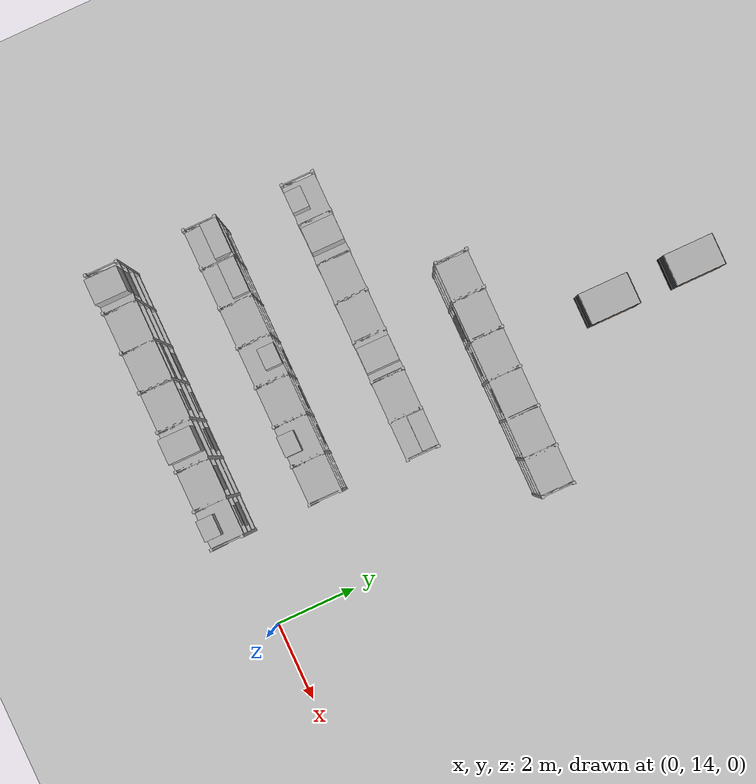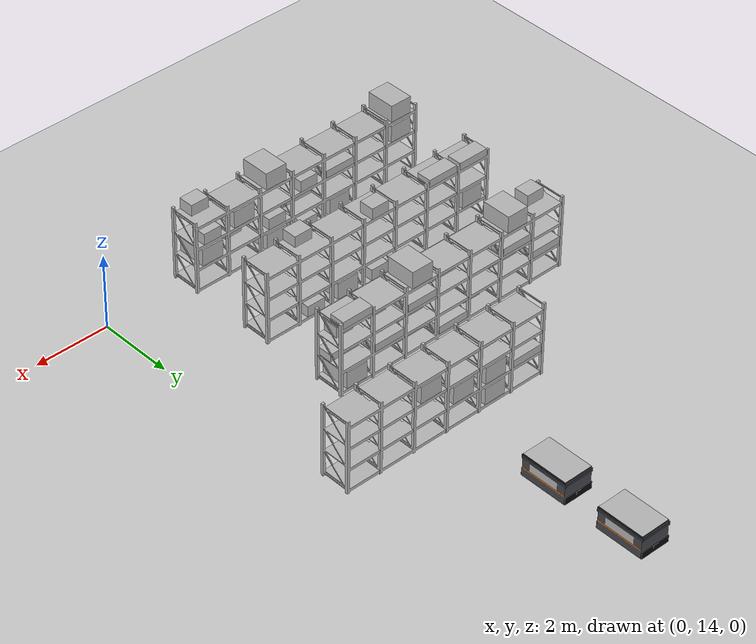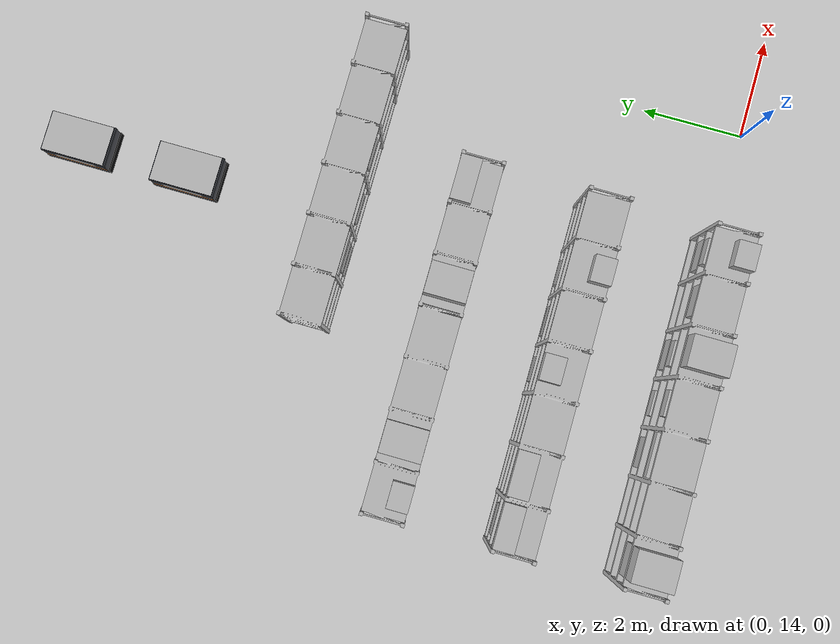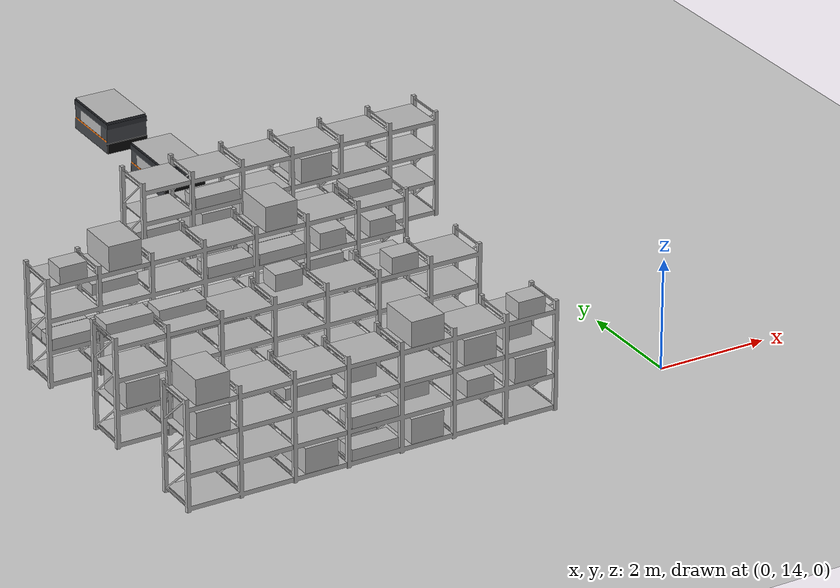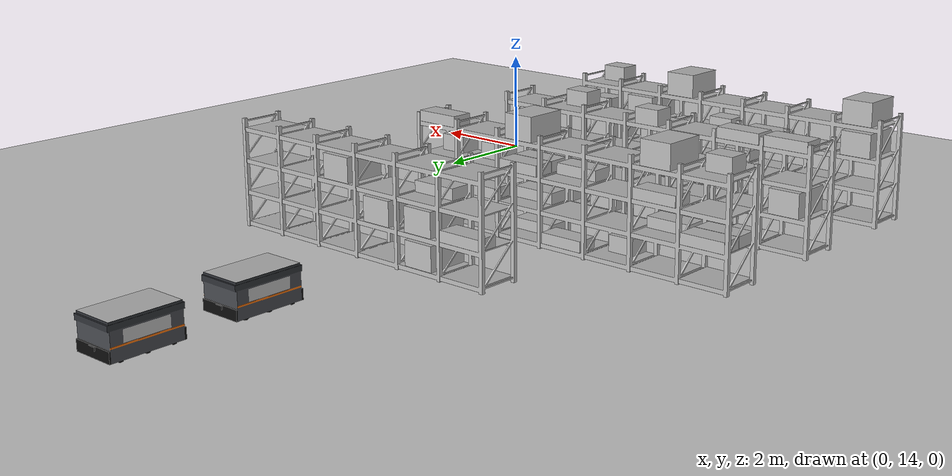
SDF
<sdf version="1.6">
 <world name="default">
  <model name="ground_plane">
   <static>1</static>
   <link name="link">
    <collision name="collision">
     <geometry><plane><normal>0 0 1</normal><size>100 100</size></plane></geometry>
     <surface><friction><ode><mu>100</mu><mu2>50</mu2></ode></friction></surface>
    </collision>
    <visual name="visual">
     <cast_shadows>0</cast_shadows>
     <geometry><plane><normal>0 0 1</normal><size>100 100</size></plane></geometry>
     <material>
      <script><uri>file://media/materials/scripts/gazebo.material</uri><name>Gazebo/Grey</name></script>
     </material>
    </visual>
   </link>
  </model>
  <include>
   <name>rack_D1_0</name>
   <uri>model://warehouse_rack_4lvl_6bay</uri>
   <pose>-3.1401 21.255 0 0 0 -1.5708</pose>
  </include>
  <model name="box_D_001">
   <pose>-5.5393 21.46 0.782 0 0 -1.5708</pose>
   <link name="link">
    <inertial>
     <mass>4.0</mass>
     <inertia><ixx>0.25417</ixx><iyy>0.06667</iyy><izz>0.29417</izz><ixy>0</ixy><ixz>0</ixz><iyz>0</iyz></inertia>
    </inertial>
    <collision name="collision">
     <geometry><box><size>0.4 0.85 0.2</size></box></geometry>
     <surface><friction><ode><mu>1.0</mu><mu2>1.0</mu2></ode></friction></surface>
    </collision>
    <visual name="visual">
     <cast_shadows>0</cast_shadows>
     <geometry><box><size>0.4 0.85 0.2</size></box></geometry>
     <material>
      <script>
       <uri>model://labeled_boxes/materials/scripts</uri>
       <uri>model://labeled_boxes/materials/textures</uri>
       <name>LabeledBox/D-001</name>
      </script>
     </material>
    </visual>
   </link>
  </model>
  <model name="box_D_002">
   <pose>-4.5901 21.255 0.327 0 0 -1.5708</pose>
   <link name="link">
    <inertial>
     <mass>8.0</mass>
     <inertia><ixx>0.37500</ixx><iyy>0.54060</iyy><izz>0.64560</izz><ixy>0</ixy><ixz>0</ixz><iyz>0</iyz></inertia>
    </inertial>
    <collision name="collision">
     <geometry><box><size>0.78 0.6 0.45</size></box></geometry>
     <surface><friction><ode><mu>1.0</mu><mu2>1.0</mu2></ode></friction></surface>
    </collision>
    <visual name="visual">
     <cast_shadows>0</cast_shadows>
     <geometry><box><size>0.78 0.6 0.45</size></box></geometry>
     <material>
      <script>
       <uri>model://labeled_boxes/materials/scripts</uri>
       <uri>model://labeled_boxes/materials/textures</uri>
       <name>LabeledBox/D-002</name>
      </script>
     </material>
    </visual>
   </link>
  </model>
  <model name="box_D_003">
   <pose>-4.5901 21.255 0.907 0 0 -1.5708</pose>
   <link name="link">
    <inertial>
     <mass>8.0</mass>
     <inertia><ixx>0.37500</ixx><iyy>0.54060</iyy><izz>0.64560</izz><ixy>0</ixy><ixz>0</ixz><iyz>0</iyz></inertia>
    </inertial>
    <collision name="collision">
     <geometry><box><size>0.78 0.6 0.45</size></box></geometry>
     <surface><friction><ode><mu>1.0</mu><mu2>1.0</mu2></ode></friction></surface>
    </collision>
    <visual name="visual">
     <cast_shadows>0</cast_shadows>
     <geometry><box><size>0.78 0.6 0.45</size></box></geometry>
     <material>
      <script>
       <uri>model://labeled_boxes/materials/scripts</uri>
       <uri>model://labeled_boxes/materials/textures</uri>
       <name>LabeledBox/D-003</name>
      </script>
     </material>
    </visual>
   </link>
  </model>
  <model name="box_D_004">
   <pose>-4.5901 21.05 1.362 0 0 -1.5708</pose>
   <link name="link">
    <inertial>
     <mass>4.0</mass>
     <inertia><ixx>0.25417</ixx><iyy>0.06667</iyy><izz>0.29417</izz><ixy>0</ixy><ixz>0</ixz><iyz>0</iyz></inertia>
    </inertial>
    <collision name="collision">
     <geometry><box><size>0.4 0.85 0.2</size></box></geometry>
     <surface><friction><ode><mu>1.0</mu><mu2>1.0</mu2></ode></friction></surface>
    </collision>
    <visual name="visual">
     <cast_shadows>0</cast_shadows>
     <geometry><box><size>0.4 0.85 0.2</size></box></geometry>
     <material>
      <script>
       <uri>model://labeled_boxes/materials/scripts</uri>
       <uri>model://labeled_boxes/materials/textures</uri>
       <name>LabeledBox/D-004</name>
      </script>
     </material>
    </visual>
   </link>
  </model>
  <model name="box_D_005">
   <pose>-3.6234 21.255 0.907 0 0 -1.5708</pose>
   <link name="link">
    <inertial>
     <mass>8.0</mass>
     <inertia><ixx>0.37500</ixx><iyy>0.54060</iyy><izz>0.64560</izz><ixy>0</ixy><ixz>0</ixz><iyz>0</iyz></inertia>
    </inertial>
    <collision name="collision">
     <geometry><box><size>0.78 0.6 0.45</size></box></geometry>
     <surface><friction><ode><mu>1.0</mu><mu2>1.0</mu2></ode></friction></surface>
    </collision>
    <visual name="visual">
     <cast_shadows>0</cast_shadows>
     <geometry><box><size>0.78 0.6 0.45</size></box></geometry>
     <material>
      <script>
       <uri>model://labeled_boxes/materials/scripts</uri>
       <uri>model://labeled_boxes/materials/textures</uri>
       <name>LabeledBox/D-005</name>
      </script>
     </material>
    </visual>
   </link>
  </model>
  <model name="box_D_007">
   <pose>-2.6568 21.255 1.487 0 0 -1.5708</pose>
   <link name="link">
    <inertial>
     <mass>8.0</mass>
     <inertia><ixx>0.37500</ixx><iyy>0.54060</iyy><izz>0.64560</izz><ixy>0</ixy><ixz>0</ixz><iyz>0</iyz></inertia>
    </inertial>
    <collision name="collision">
     <geometry><box><size>0.78 0.6 0.45</size></box></geometry>
     <surface><friction><ode><mu>1.0</mu><mu2>1.0</mu2></ode></friction></surface>
    </collision>
    <visual name="visual">
     <cast_shadows>0</cast_shadows>
     <geometry><box><size>0.78 0.6 0.45</size></box></geometry>
     <material>
      <script>
       <uri>model://labeled_boxes/materials/scripts</uri>
       <uri>model://labeled_boxes/materials/textures</uri>
       <name>LabeledBox/D-007</name>
      </script>
     </material>
    </visual>
   </link>
  </model>
  <include>
   <name>rack_D2_0</name>
   <uri>model://warehouse_rack_4lvl_7bay</uri>
   <pose>-5.6401 18.855 0 0 0 -1.5708</pose>
  </include>
  <model name="box_D_011">
   <pose>-8.5369 19.06 0.782 0 0 -1.5708</pose>
   <link name="link">
    <inertial>
     <mass>4.0</mass>
     <inertia><ixx>0.25417</ixx><iyy>0.06667</iyy><izz>0.29417</izz><ixy>0</ixy><ixz>0</ixz><iyz>0</iyz></inertia>
    </inertial>
    <collision name="collision">
     <geometry><box><size>0.4 0.85 0.2</size></box></geometry>
     <surface><friction><ode><mu>1.0</mu><mu2>1.0</mu2></ode></friction></surface>
    </collision>
    <visual name="visual">
     <cast_shadows>0</cast_shadows>
     <geometry><box><size>0.4 0.85 0.2</size></box></geometry>
     <material>
      <script>
       <uri>model://labeled_boxes/materials/scripts</uri>
       <uri>model://labeled_boxes/materials/textures</uri>
       <name>LabeledBox/D-011</name>
      </script>
     </material>
    </visual>
   </link>
  </model>
  <model name="box_D_012">
   <pose>-8.5369 18.65 0.782 0 0 -1.5708</pose>
   <link name="link">
    <inertial>
     <mass>4.0</mass>
     <inertia><ixx>0.25417</ixx><iyy>0.06667</iyy><izz>0.29417</izz><ixy>0</ixy><ixz>0</ixz><iyz>0</iyz></inertia>
    </inertial>
    <collision name="collision">
     <geometry><box><size>0.4 0.85 0.2</size></box></geometry>
     <surface><friction><ode><mu>1.0</mu><mu2>1.0</mu2></ode></friction></surface>
    </collision>
    <visual name="visual">
     <cast_shadows>0</cast_shadows>
     <geometry><box><size>0.4 0.85 0.2</size></box></geometry>
     <material>
      <script>
       <uri>model://labeled_boxes/materials/scripts</uri>
       <uri>model://labeled_boxes/materials/textures</uri>
       <name>LabeledBox/D-012</name>
      </script>
     </material>
    </visual>
   </link>
  </model>
  <model name="box_D_013">
   <pose>-8.5369 18.65 1.992 0 0 -1.5708</pose>
   <link name="link">
    <inertial>
     <mass>2.0</mass>
     <inertia><ixx>0.05667</ixx><iyy>0.04167</iyy><izz>0.06833</izz><ixy>0</ixy><ixz>0</ixz><iyz>0</iyz></inertia>
    </inertial>
    <collision name="collision">
     <geometry><box><size>0.4 0.5 0.3</size></box></geometry>
     <surface><friction><ode><mu>1.0</mu><mu2>1.0</mu2></ode></friction></surface>
    </collision>
    <visual name="visual">
     <cast_shadows>0</cast_shadows>
     <geometry><box><size>0.4 0.5 0.3</size></box></geometry>
     <material>
      <script>
       <uri>model://labeled_boxes/materials/scripts</uri>
       <uri>model://labeled_boxes/materials/textures</uri>
       <name>LabeledBox/D-013</name>
      </script>
     </material>
    </visual>
   </link>
  </model>
  <model name="box_D_014">
   <pose>-7.583 18.65 0.782 0 0 -1.5708</pose>
   <link name="link">
    <inertial>
     <mass>4.0</mass>
     <inertia><ixx>0.25417</ixx><iyy>0.06667</iyy><izz>0.29417</izz><ixy>0</ixy><ixz>0</ixz><iyz>0</iyz></inertia>
    </inertial>
    <collision name="collision">
     <geometry><box><size>0.4 0.85 0.2</size></box></geometry>
     <surface><friction><ode><mu>1.0</mu><mu2>1.0</mu2></ode></friction></surface>
    </collision>
    <visual name="visual">
     <cast_shadows>0</cast_shadows>
     <geometry><box><size>0.4 0.85 0.2</size></box></geometry>
     <material>
      <script>
       <uri>model://labeled_boxes/materials/scripts</uri>
       <uri>model://labeled_boxes/materials/textures</uri>
       <name>LabeledBox/D-014</name>
      </script>
     </material>
    </visual>
   </link>
  </model>
  <model name="box_D_015">
   <pose>-7.583 19.06 1.362 0 0 -1.5708</pose>
   <link name="link">
    <inertial>
     <mass>4.0</mass>
     <inertia><ixx>0.25417</ixx><iyy>0.06667</iyy><izz>0.29417</izz><ixy>0</ixy><ixz>0</ixz><iyz>0</iyz></inertia>
    </inertial>
    <collision name="collision">
     <geometry><box><size>0.4 0.85 0.2</size></box></geometry>
     <surface><friction><ode><mu>1.0</mu><mu2>1.0</mu2></ode></friction></surface>
    </collision>
    <visual name="visual">
     <cast_shadows>0</cast_shadows>
     <geometry><box><size>0.4 0.85 0.2</size></box></geometry>
     <material>
      <script>
       <uri>model://labeled_boxes/materials/scripts</uri>
       <uri>model://labeled_boxes/materials/textures</uri>
       <name>LabeledBox/D-015</name>
      </script>
     </material>
    </visual>
   </link>
  </model>
  <model name="box_D_016">
   <pose>-7.583 18.855 2.067 0 0 -1.5708</pose>
   <link name="link">
    <inertial>
     <mass>8.0</mass>
     <inertia><ixx>0.37500</ixx><iyy>0.54060</iyy><izz>0.64560</izz><ixy>0</ixy><ixz>0</ixz><iyz>0</iyz></inertia>
    </inertial>
    <collision name="collision">
     <geometry><box><size>0.78 0.6 0.45</size></box></geometry>
     <surface><friction><ode><mu>1.0</mu><mu2>1.0</mu2></ode></friction></surface>
    </collision>
    <visual name="visual">
     <cast_shadows>0</cast_shadows>
     <geometry><box><size>0.78 0.6 0.45</size></box></geometry>
     <material>
      <script>
       <uri>model://labeled_boxes/materials/scripts</uri>
       <uri>model://labeled_boxes/materials/textures</uri>
       <name>LabeledBox/D-016</name>
      </script>
     </material>
    </visual>
   </link>
  </model>
  <model name="box_D_017">
   <pose>-6.6115 18.65 0.252 0 0 -1.5708</pose>
   <link name="link">
    <inertial>
     <mass>2.0</mass>
     <inertia><ixx>0.05667</ixx><iyy>0.04167</iyy><izz>0.06833</izz><ixy>0</ixy><ixz>0</ixz><iyz>0</iyz></inertia>
    </inertial>
    <collision name="collision">
     <geometry><box><size>0.4 0.5 0.3</size></box></geometry>
     <surface><friction><ode><mu>1.0</mu><mu2>1.0</mu2></ode></friction></surface>
    </collision>
    <visual name="visual">
     <cast_shadows>0</cast_shadows>
     <geometry><box><size>0.4 0.5 0.3</size></box></geometry>
     <material>
      <script>
       <uri>model://labeled_boxes/materials/scripts</uri>
       <uri>model://labeled_boxes/materials/textures</uri>
       <name>LabeledBox/D-017</name>
      </script>
     </material>
    </visual>
   </link>
  </model>
  <model name="box_D_018">
   <pose>-5.6401 19.06 0.202 0 0 -1.5708</pose>
   <link name="link">
    <inertial>
     <mass>4.0</mass>
     <inertia><ixx>0.25417</ixx><iyy>0.06667</iyy><izz>0.29417</izz><ixy>0</ixy><ixz>0</ixz><iyz>0</iyz></inertia>
    </inertial>
    <collision name="collision">
     <geometry><box><size>0.4 0.85 0.2</size></box></geometry>
     <surface><friction><ode><mu>1.0</mu><mu2>1.0</mu2></ode></friction></surface>
    </collision>
    <visual name="visual">
     <cast_shadows>0</cast_shadows>
     <geometry><box><size>0.4 0.85 0.2</size></box></geometry>
     <material>
      <script>
       <uri>model://labeled_boxes/materials/scripts</uri>
       <uri>model://labeled_boxes/materials/textures</uri>
       <name>LabeledBox/D-018</name>
      </script>
     </material>
    </visual>
   </link>
  </model>
  <model name="box_D_019">
   <pose>-5.6401 18.65 1.362 0 0 -1.5708</pose>
   <link name="link">
    <inertial>
     <mass>4.0</mass>
     <inertia><ixx>0.25417</ixx><iyy>0.06667</iyy><izz>0.29417</izz><ixy>0</ixy><ixz>0</ixz><iyz>0</iyz></inertia>
    </inertial>
    <collision name="collision">
     <geometry><box><size>0.4 0.85 0.2</size></box></geometry>
     <surface><friction><ode><mu>1.0</mu><mu2>1.0</mu2></ode></friction></surface>
    </collision>
    <visual name="visual">
     <cast_shadows>0</cast_shadows>
     <geometry><box><size>0.4 0.85 0.2</size></box></geometry>
     <material>
      <script>
       <uri>model://labeled_boxes/materials/scripts</uri>
       <uri>model://labeled_boxes/materials/textures</uri>
       <name>LabeledBox/D-019</name>
      </script>
     </material>
    </visual>
   </link>
  </model>
  <model name="box_D_020">
   <pose>-4.6687 18.65 0.202 0 0 -1.5708</pose>
   <link name="link">
    <inertial>
     <mass>4.0</mass>
     <inertia><ixx>0.25417</ixx><iyy>0.06667</iyy><izz>0.29417</izz><ixy>0</ixy><ixz>0</ixz><iyz>0</iyz></inertia>
    </inertial>
    <collision name="collision">
     <geometry><box><size>0.4 0.85 0.2</size></box></geometry>
     <surface><friction><ode><mu>1.0</mu><mu2>1.0</mu2></ode></friction></surface>
    </collision>
    <visual name="visual">
     <cast_shadows>0</cast_shadows>
     <geometry><box><size>0.4 0.85 0.2</size></box></geometry>
     <material>
      <script>
       <uri>model://labeled_boxes/materials/scripts</uri>
       <uri>model://labeled_boxes/materials/textures</uri>
       <name>LabeledBox/D-020</name>
      </script>
     </material>
    </visual>
   </link>
  </model>
  <model name="box_D_021">
   <pose>-4.6687 18.65 0.782 0 0 -1.5708</pose>
   <link name="link">
    <inertial>
     <mass>4.0</mass>
     <inertia><ixx>0.25417</ixx><iyy>0.06667</iyy><izz>0.29417</izz><ixy>0</ixy><ixz>0</ixz><iyz>0</iyz></inertia>
    </inertial>
    <collision name="collision">
     <geometry><box><size>0.4 0.85 0.2</size></box></geometry>
     <surface><friction><ode><mu>1.0</mu><mu2>1.0</mu2></ode></friction></surface>
    </collision>
    <visual name="visual">
     <cast_shadows>0</cast_shadows>
     <geometry><box><size>0.4 0.85 0.2</size></box></geometry>
     <material>
      <script>
       <uri>model://labeled_boxes/materials/scripts</uri>
       <uri>model://labeled_boxes/materials/textures</uri>
       <name>LabeledBox/D-021</name>
      </script>
     </material>
    </visual>
   </link>
  </model>
  <model name="box_D_022">
   <pose>-4.6687 19.06 1.362 0 0 -1.5708</pose>
   <link name="link">
    <inertial>
     <mass>4.0</mass>
     <inertia><ixx>0.25417</ixx><iyy>0.06667</iyy><izz>0.29417</izz><ixy>0</ixy><ixz>0</ixz><iyz>0</iyz></inertia>
    </inertial>
    <collision name="collision">
     <geometry><box><size>0.4 0.85 0.2</size></box></geometry>
     <surface><friction><ode><mu>1.0</mu><mu2>1.0</mu2></ode></friction></surface>
    </collision>
    <visual name="visual">
     <cast_shadows>0</cast_shadows>
     <geometry><box><size>0.4 0.85 0.2</size></box></geometry>
     <material>
      <script>
       <uri>model://labeled_boxes/materials/scripts</uri>
       <uri>model://labeled_boxes/materials/textures</uri>
       <name>LabeledBox/D-022</name>
      </script>
     </material>
    </visual>
   </link>
  </model>
  <model name="box_D_023">
   <pose>-4.6687 18.65 1.362 0 0 -1.5708</pose>
   <link name="link">
    <inertial>
     <mass>4.0</mass>
     <inertia><ixx>0.25417</ixx><iyy>0.06667</iyy><izz>0.29417</izz><ixy>0</ixy><ixz>0</ixz><iyz>0</iyz></inertia>
    </inertial>
    <collision name="collision">
     <geometry><box><size>0.4 0.85 0.2</size></box></geometry>
     <surface><friction><ode><mu>1.0</mu><mu2>1.0</mu2></ode></friction></surface>
    </collision>
    <visual name="visual">
     <cast_shadows>0</cast_shadows>
     <geometry><box><size>0.4 0.85 0.2</size></box></geometry>
     <material>
      <script>
       <uri>model://labeled_boxes/materials/scripts</uri>
       <uri>model://labeled_boxes/materials/textures</uri>
       <name>LabeledBox/D-023</name>
      </script>
     </material>
    </visual>
   </link>
  </model>
  <model name="box_D_024">
   <pose>-4.6687 18.855 2.067 0 0 -1.5708</pose>
   <link name="link">
    <inertial>
     <mass>8.0</mass>
     <inertia><ixx>0.37500</ixx><iyy>0.54060</iyy><izz>0.64560</izz><ixy>0</ixy><ixz>0</ixz><iyz>0</iyz></inertia>
    </inertial>
    <collision name="collision">
     <geometry><box><size>0.78 0.6 0.45</size></box></geometry>
     <surface><friction><ode><mu>1.0</mu><mu2>1.0</mu2></ode></friction></surface>
    </collision>
    <visual name="visual">
     <cast_shadows>0</cast_shadows>
     <geometry><box><size>0.78 0.6 0.45</size></box></geometry>
     <material>
      <script>
       <uri>model://labeled_boxes/materials/scripts</uri>
       <uri>model://labeled_boxes/materials/textures</uri>
       <name>LabeledBox/D-024</name>
      </script>
     </material>
    </visual>
   </link>
  </model>
  <model name="box_D_025">
   <pose>-3.6972 19.06 0.782 0 0 -1.5708</pose>
   <link name="link">
    <inertial>
     <mass>4.0</mass>
     <inertia><ixx>0.25417</ixx><iyy>0.06667</iyy><izz>0.29417</izz><ixy>0</ixy><ixz>0</ixz><iyz>0</iyz></inertia>
    </inertial>
    <collision name="collision">
     <geometry><box><size>0.4 0.85 0.2</size></box></geometry>
     <surface><friction><ode><mu>1.0</mu><mu2>1.0</mu2></ode></friction></surface>
    </collision>
    <visual name="visual">
     <cast_shadows>0</cast_shadows>
     <geometry><box><size>0.4 0.85 0.2</size></box></geometry>
     <material>
      <script>
       <uri>model://labeled_boxes/materials/scripts</uri>
       <uri>model://labeled_boxes/materials/textures</uri>
       <name>LabeledBox/D-025</name>
      </script>
     </material>
    </visual>
   </link>
  </model>
  <model name="box_D_026">
   <pose>-3.6972 18.65 1.412 0 0 -1.5708</pose>
   <link name="link">
    <inertial>
     <mass>2.0</mass>
     <inertia><ixx>0.05667</ixx><iyy>0.04167</iyy><izz>0.06833</izz><ixy>0</ixy><ixz>0</ixz><iyz>0</iyz></inertia>
    </inertial>
    <collision name="collision">
     <geometry><box><size>0.4 0.5 0.3</size></box></geometry>
     <surface><friction><ode><mu>1.0</mu><mu2>1.0</mu2></ode></friction></surface>
    </collision>
    <visual name="visual">
     <cast_shadows>0</cast_shadows>
     <geometry><box><size>0.4 0.5 0.3</size></box></geometry>
     <material>
      <script>
       <uri>model://labeled_boxes/materials/scripts</uri>
       <uri>model://labeled_boxes/materials/textures</uri>
       <name>LabeledBox/D-026</name>
      </script>
     </material>
    </visual>
   </link>
  </model>
  <model name="box_D_027">
   <pose>-2.7433 18.855 0.327 0 0 -1.5708</pose>
   <link name="link">
    <inertial>
     <mass>8.0</mass>
     <inertia><ixx>0.37500</ixx><iyy>0.54060</iyy><izz>0.64560</izz><ixy>0</ixy><ixz>0</ixz><iyz>0</iyz></inertia>
    </inertial>
    <collision name="collision">
     <geometry><box><size>0.78 0.6 0.45</size></box></geometry>
     <surface><friction><ode><mu>1.0</mu><mu2>1.0</mu2></ode></friction></surface>
    </collision>
    <visual name="visual">
     <cast_shadows>0</cast_shadows>
     <geometry><box><size>0.78 0.6 0.45</size></box></geometry>
     <material>
      <script>
       <uri>model://labeled_boxes/materials/scripts</uri>
       <uri>model://labeled_boxes/materials/textures</uri>
       <name>LabeledBox/D-027</name>
      </script>
     </material>
    </visual>
   </link>
  </model>
  <model name="box_D_028">
   <pose>-2.7433 18.65 0.782 0 0 -1.5708</pose>
   <link name="link">
    <inertial>
     <mass>4.0</mass>
     <inertia><ixx>0.25417</ixx><iyy>0.06667</iyy><izz>0.29417</izz><ixy>0</ixy><ixz>0</ixz><iyz>0</iyz></inertia>
    </inertial>
    <collision name="collision">
     <geometry><box><size>0.4 0.85 0.2</size></box></geometry>
     <surface><friction><ode><mu>1.0</mu><mu2>1.0</mu2></ode></friction></surface>
    </collision>
    <visual name="visual">
     <cast_shadows>0</cast_shadows>
     <geometry><box><size>0.4 0.85 0.2</size></box></geometry>
     <material>
      <script>
       <uri>model://labeled_boxes/materials/scripts</uri>
       <uri>model://labeled_boxes/materials/textures</uri>
       <name>LabeledBox/D-028</name>
      </script>
     </material>
    </visual>
   </link>
  </model>
  <model name="box_D_029">
   <pose>-2.7433 18.65 1.412 0 0 -1.5708</pose>
   <link name="link">
    <inertial>
     <mass>2.0</mass>
     <inertia><ixx>0.05667</ixx><iyy>0.04167</iyy><izz>0.06833</izz><ixy>0</ixy><ixz>0</ixz><iyz>0</iyz></inertia>
    </inertial>
    <collision name="collision">
     <geometry><box><size>0.4 0.5 0.3</size></box></geometry>
     <surface><friction><ode><mu>1.0</mu><mu2>1.0</mu2></ode></friction></surface>
    </collision>
    <visual name="visual">
     <cast_shadows>0</cast_shadows>
     <geometry><box><size>0.4 0.5 0.3</size></box></geometry>
     <material>
      <script>
       <uri>model://labeled_boxes/materials/scripts</uri>
       <uri>model://labeled_boxes/materials/textures</uri>
       <name>LabeledBox/D-029</name>
      </script>
     </material>
    </visual>
   </link>
  </model>
  <model name="box_D_030">
   <pose>-2.7433 19.06 1.942 0 0 -1.5708</pose>
   <link name="link">
    <inertial>
     <mass>4.0</mass>
     <inertia><ixx>0.25417</ixx><iyy>0.06667</iyy><izz>0.29417</izz><ixy>0</ixy><ixz>0</ixz><iyz>0</iyz></inertia>
    </inertial>
    <collision name="collision">
     <geometry><box><size>0.4 0.85 0.2</size></box></geometry>
     <surface><friction><ode><mu>1.0</mu><mu2>1.0</mu2></ode></friction></surface>
    </collision>
    <visual name="visual">
     <cast_shadows>0</cast_shadows>
     <geometry><box><size>0.4 0.85 0.2</size></box></geometry>
     <material>
      <script>
       <uri>model://labeled_boxes/materials/scripts</uri>
       <uri>model://labeled_boxes/materials/textures</uri>
       <name>LabeledBox/D-030</name>
      </script>
     </material>
    </visual>
   </link>
  </model>
  <include>
   <name>rack_D3_0</name>
   <uri>model://warehouse_rack_4lvl_7bay</uri>
   <pose>-5.6401 16.455 0 0 0 -1.5708</pose>
  </include>
  <model name="box_D_046">
   <pose>-8.5369 16.455 0.907 0 0 -1.5708</pose>
   <link name="link">
    <inertial>
     <mass>8.0</mass>
     <inertia><ixx>0.37500</ixx><iyy>0.54060</iyy><izz>0.64560</izz><ixy>0</ixy><ixz>0</ixz><iyz>0</iyz></inertia>
    </inertial>
    <collision name="collision">
     <geometry><box><size>0.78 0.6 0.45</size></box></geometry>
     <surface><friction><ode><mu>1.0</mu><mu2>1.0</mu2></ode></friction></surface>
    </collision>
    <visual name="visual">
     <cast_shadows>0</cast_shadows>
     <geometry><box><size>0.78 0.6 0.45</size></box></geometry>
     <material>
      <script>
       <uri>model://labeled_boxes/materials/scripts</uri>
       <uri>model://labeled_boxes/materials/textures</uri>
       <name>LabeledBox/D-046</name>
      </script>
     </material>
    </visual>
   </link>
  </model>
  <model name="box_D_047">
   <pose>-8.5369 16.66 1.942 0 0 -1.5708</pose>
   <link name="link">
    <inertial>
     <mass>4.0</mass>
     <inertia><ixx>0.25417</ixx><iyy>0.06667</iyy><izz>0.29417</izz><ixy>0</ixy><ixz>0</ixz><iyz>0</iyz></inertia>
    </inertial>
    <collision name="collision">
     <geometry><box><size>0.4 0.85 0.2</size></box></geometry>
     <surface><friction><ode><mu>1.0</mu><mu2>1.0</mu2></ode></friction></surface>
    </collision>
    <visual name="visual">
     <cast_shadows>0</cast_shadows>
     <geometry><box><size>0.4 0.85 0.2</size></box></geometry>
     <material>
      <script>
       <uri>model://labeled_boxes/materials/scripts</uri>
       <uri>model://labeled_boxes/materials/textures</uri>
       <name>LabeledBox/D-047</name>
      </script>
     </material>
    </visual>
   </link>
  </model>
  <model name="box_D_048">
   <pose>-7.583 16.66 1.942 0 0 -1.5708</pose>
   <link name="link">
    <inertial>
     <mass>4.0</mass>
     <inertia><ixx>0.25417</ixx><iyy>0.06667</iyy><izz>0.29417</izz><ixy>0</ixy><ixz>0</ixz><iyz>0</iyz></inertia>
    </inertial>
    <collision name="collision">
     <geometry><box><size>0.4 0.85 0.2</size></box></geometry>
     <surface><friction><ode><mu>1.0</mu><mu2>1.0</mu2></ode></friction></surface>
    </collision>
    <visual name="visual">
     <cast_shadows>0</cast_shadows>
     <geometry><box><size>0.4 0.85 0.2</size></box></geometry>
     <material>
      <script>
       <uri>model://labeled_boxes/materials/scripts</uri>
       <uri>model://labeled_boxes/materials/textures</uri>
       <name>LabeledBox/D-048</name>
      </script>
     </material>
    </visual>
   </link>
  </model>
  <model name="box_D_049">
   <pose>-5.6401 16.66 0.252 0 0 -1.5708</pose>
   <link name="link">
    <inertial>
     <mass>2.0</mass>
     <inertia><ixx>0.05667</ixx><iyy>0.04167</iyy><izz>0.06833</izz><ixy>0</ixy><ixz>0</ixz><iyz>0</iyz></inertia>
    </inertial>
    <collision name="collision">
     <geometry><box><size>0.4 0.5 0.3</size></box></geometry>
     <surface><friction><ode><mu>1.0</mu><mu2>1.0</mu2></ode></friction></surface>
    </collision>
    <visual name="visual">
     <cast_shadows>0</cast_shadows>
     <geometry><box><size>0.4 0.5 0.3</size></box></geometry>
     <material>
      <script>
       <uri>model://labeled_boxes/materials/scripts</uri>
       <uri>model://labeled_boxes/materials/textures</uri>
       <name>LabeledBox/D-049</name>
      </script>
     </material>
    </visual>
   </link>
  </model>
  <model name="box_D_050">
   <pose>-5.6401 16.66 1.992 0 0 -1.5708</pose>
   <link name="link">
    <inertial>
     <mass>2.0</mass>
     <inertia><ixx>0.05667</ixx><iyy>0.04167</iyy><izz>0.06833</izz><ixy>0</ixy><ixz>0</ixz><iyz>0</iyz></inertia>
    </inertial>
    <collision name="collision">
     <geometry><box><size>0.4 0.5 0.3</size></box></geometry>
     <surface><friction><ode><mu>1.0</mu><mu2>1.0</mu2></ode></friction></surface>
    </collision>
    <visual name="visual">
     <cast_shadows>0</cast_shadows>
     <geometry><box><size>0.4 0.5 0.3</size></box></geometry>
     <material>
      <script>
       <uri>model://labeled_boxes/materials/scripts</uri>
       <uri>model://labeled_boxes/materials/textures</uri>
       <name>LabeledBox/D-050</name>
      </script>
     </material>
    </visual>
   </link>
  </model>
  <model name="box_D_051">
   <pose>-4.6687 16.455 0.327 0 0 -1.5708</pose>
   <link name="link">
    <inertial>
     <mass>8.0</mass>
     <inertia><ixx>0.37500</ixx><iyy>0.54060</iyy><izz>0.64560</izz><ixy>0</ixy><ixz>0</ixz><iyz>0</iyz></inertia>
    </inertial>
    <collision name="collision">
     <geometry><box><size>0.78 0.6 0.45</size></box></geometry>
     <surface><friction><ode><mu>1.0</mu><mu2>1.0</mu2></ode></friction></surface>
    </collision>
    <visual name="visual">
     <cast_shadows>0</cast_shadows>
     <geometry><box><size>0.78 0.6 0.45</size></box></geometry>
     <material>
      <script>
       <uri>model://labeled_boxes/materials/scripts</uri>
       <uri>model://labeled_boxes/materials/textures</uri>
       <name>LabeledBox/D-051</name>
      </script>
     </material>
    </visual>
   </link>
  </model>
  <model name="box_D_052">
   <pose>-3.6972 16.66 0.252 0 0 -1.5708</pose>
   <link name="link">
    <inertial>
     <mass>2.0</mass>
     <inertia><ixx>0.05667</ixx><iyy>0.04167</iyy><izz>0.06833</izz><ixy>0</ixy><ixz>0</ixz><iyz>0</iyz></inertia>
    </inertial>
    <collision name="collision">
     <geometry><box><size>0.4 0.5 0.3</size></box></geometry>
     <surface><friction><ode><mu>1.0</mu><mu2>1.0</mu2></ode></friction></surface>
    </collision>
    <visual name="visual">
     <cast_shadows>0</cast_shadows>
     <geometry><box><size>0.4 0.5 0.3</size></box></geometry>
     <material>
      <script>
       <uri>model://labeled_boxes/materials/scripts</uri>
       <uri>model://labeled_boxes/materials/textures</uri>
       <name>LabeledBox/D-052</name>
      </script>
     </material>
    </visual>
   </link>
  </model>
  <model name="box_D_053">
   <pose>-3.6972 16.25 1.992 0 0 -1.5708</pose>
   <link name="link">
    <inertial>
     <mass>2.0</mass>
     <inertia><ixx>0.05667</ixx><iyy>0.04167</iyy><izz>0.06833</izz><ixy>0</ixy><ixz>0</ixz><iyz>0</iyz></inertia>
    </inertial>
    <collision name="collision">
     <geometry><box><size>0.4 0.5 0.3</size></box></geometry>
     <surface><friction><ode><mu>1.0</mu><mu2>1.0</mu2></ode></friction></surface>
    </collision>
    <visual name="visual">
     <cast_shadows>0</cast_shadows>
     <geometry><box><size>0.4 0.5 0.3</size></box></geometry>
     <material>
      <script>
       <uri>model://labeled_boxes/materials/scripts</uri>
       <uri>model://labeled_boxes/materials/textures</uri>
       <name>LabeledBox/D-053</name>
      </script>
     </material>
    </visual>
   </link>
  </model>
  <include>
   <name>rack_D4_0</name>
   <uri>model://warehouse_rack_4lvl_7bay</uri>
   <pose>-5.6401 14.055 0 0 0 -1.5708</pose>
  </include>
  <model name="box_D_067">
   <pose>-8.5369 14.055 1.487 0 0 -1.5708</pose>
   <link name="link">
    <inertial>
     <mass>8.0</mass>
     <inertia><ixx>0.37500</ixx><iyy>0.54060</iyy><izz>0.64560</izz><ixy>0</ixy><ixz>0</ixz><iyz>0</iyz></inertia>
    </inertial>
    <collision name="collision">
     <geometry><box><size>0.78 0.6 0.45</size></box></geometry>
     <surface><friction><ode><mu>1.0</mu><mu2>1.0</mu2></ode></friction></surface>
    </collision>
    <visual name="visual">
     <cast_shadows>0</cast_shadows>
     <geometry><box><size>0.78 0.6 0.45</size></box></geometry>
     <material>
      <script>
       <uri>model://labeled_boxes/materials/scripts</uri>
       <uri>model://labeled_boxes/materials/textures</uri>
       <name>LabeledBox/D-067</name>
      </script>
     </material>
    </visual>
   </link>
  </model>
  <model name="box_D_068">
   <pose>-8.5369 14.055 2.067 0 0 -1.5708</pose>
   <link name="link">
    <inertial>
     <mass>8.0</mass>
     <inertia><ixx>0.37500</ixx><iyy>0.54060</iyy><izz>0.64560</izz><ixy>0</ixy><ixz>0</ixz><iyz>0</iyz></inertia>
    </inertial>
    <collision name="collision">
     <geometry><box><size>0.78 0.6 0.45</size></box></geometry>
     <surface><friction><ode><mu>1.0</mu><mu2>1.0</mu2></ode></friction></surface>
    </collision>
    <visual name="visual">
     <cast_shadows>0</cast_shadows>
     <geometry><box><size>0.78 0.6 0.45</size></box></geometry>
     <material>
      <script>
       <uri>model://labeled_boxes/materials/scripts</uri>
       <uri>model://labeled_boxes/materials/textures</uri>
       <name>LabeledBox/D-068</name>
      </script>
     </material>
    </visual>
   </link>
  </model>
  <model name="box_D_070">
   <pose>-6.6115 14.055 0.327 0 0 -1.5708</pose>
   <link name="link">
    <inertial>
     <mass>8.0</mass>
     <inertia><ixx>0.37500</ixx><iyy>0.54060</iyy><izz>0.64560</izz><ixy>0</ixy><ixz>0</ixz><iyz>0</iyz></inertia>
    </inertial>
    <collision name="collision">
     <geometry><box><size>0.78 0.6 0.45</size></box></geometry>
     <surface><friction><ode><mu>1.0</mu><mu2>1.0</mu2></ode></friction></surface>
    </collision>
    <visual name="visual">
     <cast_shadows>0</cast_shadows>
     <geometry><box><size>0.78 0.6 0.45</size></box></geometry>
     <material>
      <script>
       <uri>model://labeled_boxes/materials/scripts</uri>
       <uri>model://labeled_boxes/materials/textures</uri>
       <name>LabeledBox/D-070</name>
      </script>
     </material>
    </visual>
   </link>
  </model>
  <model name="box_D_071">
   <pose>-6.6115 14.26 1.362 0 0 -1.5708</pose>
   <link name="link">
    <inertial>
     <mass>4.0</mass>
     <inertia><ixx>0.25417</ixx><iyy>0.06667</iyy><izz>0.29417</izz><ixy>0</ixy><ixz>0</ixz><iyz>0</iyz></inertia>
    </inertial>
    <collision name="collision">
     <geometry><box><size>0.4 0.85 0.2</size></box></geometry>
     <surface><friction><ode><mu>1.0</mu><mu2>1.0</mu2></ode></friction></surface>
    </collision>
    <visual name="visual">
     <cast_shadows>0</cast_shadows>
     <geometry><box><size>0.4 0.85 0.2</size></box></geometry>
     <material>
      <script>
       <uri>model://labeled_boxes/materials/scripts</uri>
       <uri>model://labeled_boxes/materials/textures</uri>
       <name>LabeledBox/D-071</name>
      </script>
     </material>
    </visual>
   </link>
  </model>
  <model name="box_D_073">
   <pose>-5.6401 14.26 0.252 0 0 -1.5708</pose>
   <link name="link">
    <inertial>
     <mass>2.0</mass>
     <inertia><ixx>0.05667</ixx><iyy>0.04167</iyy><izz>0.06833</izz><ixy>0</ixy><ixz>0</ixz><iyz>0</iyz></inertia>
    </inertial>
    <collision name="collision">
     <geometry><box><size>0.4 0.5 0.3</size></box></geometry>
     <surface><friction><ode><mu>1.0</mu><mu2>1.0</mu2></ode></friction></surface>
    </collision>
    <visual name="visual">
     <cast_shadows>0</cast_shadows>
     <geometry><box><size>0.4 0.5 0.3</size></box></geometry>
     <material>
      <script>
       <uri>model://labeled_boxes/materials/scripts</uri>
       <uri>model://labeled_boxes/materials/textures</uri>
       <name>LabeledBox/D-073</name>
      </script>
     </material>
    </visual>
   </link>
  </model>
  <model name="box_D_074">
   <pose>-5.6401 13.85 0.202 0 0 -1.5708</pose>
   <link name="link">
    <inertial>
     <mass>4.0</mass>
     <inertia><ixx>0.25417</ixx><iyy>0.06667</iyy><izz>0.29417</izz><ixy>0</ixy><ixz>0</ixz><iyz>0</iyz></inertia>
    </inertial>
    <collision name="collision">
     <geometry><box><size>0.4 0.85 0.2</size></box></geometry>
     <surface><friction><ode><mu>1.0</mu><mu2>1.0</mu2></ode></friction></surface>
    </collision>
    <visual name="visual">
     <cast_shadows>0</cast_shadows>
     <geometry><box><size>0.4 0.85 0.2</size></box></geometry>
     <material>
      <script>
       <uri>model://labeled_boxes/materials/scripts</uri>
       <uri>model://labeled_boxes/materials/textures</uri>
       <name>LabeledBox/D-074</name>
      </script>
     </material>
    </visual>
   </link>
  </model>
  <model name="box_D_075">
   <pose>-5.6401 13.85 0.782 0 0 -1.5708</pose>
   <link name="link">
    <inertial>
     <mass>4.0</mass>
     <inertia><ixx>0.25417</ixx><iyy>0.06667</iyy><izz>0.29417</izz><ixy>0</ixy><ixz>0</ixz><iyz>0</iyz></inertia>
    </inertial>
    <collision name="collision">
     <geometry><box><size>0.4 0.85 0.2</size></box></geometry>
     <surface><friction><ode><mu>1.0</mu><mu2>1.0</mu2></ode></friction></surface>
    </collision>
    <visual name="visual">
     <cast_shadows>0</cast_shadows>
     <geometry><box><size>0.4 0.85 0.2</size></box></geometry>
     <material>
      <script>
       <uri>model://labeled_boxes/materials/scripts</uri>
       <uri>model://labeled_boxes/materials/textures</uri>
       <name>LabeledBox/D-075</name>
      </script>
     </material>
    </visual>
   </link>
  </model>
  <model name="box_D_076">
   <pose>-5.6401 14.26 1.412 0 0 -1.5708</pose>
   <link name="link">
    <inertial>
     <mass>2.0</mass>
     <inertia><ixx>0.05667</ixx><iyy>0.04167</iyy><izz>0.06833</izz><ixy>0</ixy><ixz>0</ixz><iyz>0</iyz></inertia>
    </inertial>
    <collision name="collision">
     <geometry><box><size>0.4 0.5 0.3</size></box></geometry>
     <surface><friction><ode><mu>1.0</mu><mu2>1.0</mu2></ode></friction></surface>
    </collision>
    <visual name="visual">
     <cast_shadows>0</cast_shadows>
     <geometry><box><size>0.4 0.5 0.3</size></box></geometry>
     <material>
      <script>
       <uri>model://labeled_boxes/materials/scripts</uri>
       <uri>model://labeled_boxes/materials/textures</uri>
       <name>LabeledBox/D-076</name>
      </script>
     </material>
    </visual>
   </link>
  </model>
  <model name="box_D_077">
   <pose>-4.6687 14.055 0.327 0 0 -1.5708</pose>
   <link name="link">
    <inertial>
     <mass>8.0</mass>
     <inertia><ixx>0.37500</ixx><iyy>0.54060</iyy><izz>0.64560</izz><ixy>0</ixy><ixz>0</ixz><iyz>0</iyz></inertia>
    </inertial>
    <collision name="collision">
     <geometry><box><size>0.78 0.6 0.45</size></box></geometry>
     <surface><friction><ode><mu>1.0</mu><mu2>1.0</mu2></ode></friction></surface>
    </collision>
    <visual name="visual">
     <cast_shadows>0</cast_shadows>
     <geometry><box><size>0.78 0.6 0.45</size></box></geometry>
     <material>
      <script>
       <uri>model://labeled_boxes/materials/scripts</uri>
       <uri>model://labeled_boxes/materials/textures</uri>
       <name>LabeledBox/D-077</name>
      </script>
     </material>
    </visual>
   </link>
  </model>
  <model name="box_D_078">
   <pose>-4.6687 14.26 0.832 0 0 -1.5708</pose>
   <link name="link">
    <inertial>
     <mass>2.0</mass>
     <inertia><ixx>0.05667</ixx><iyy>0.04167</iyy><izz>0.06833</izz><ixy>0</ixy><ixz>0</ixz><iyz>0</iyz></inertia>
    </inertial>
    <collision name="collision">
     <geometry><box><size>0.4 0.5 0.3</size></box></geometry>
     <surface><friction><ode><mu>1.0</mu><mu2>1.0</mu2></ode></friction></surface>
    </collision>
    <visual name="visual">
     <cast_shadows>0</cast_shadows>
     <geometry><box><size>0.4 0.5 0.3</size></box></geometry>
     <material>
      <script>
       <uri>model://labeled_boxes/materials/scripts</uri>
       <uri>model://labeled_boxes/materials/textures</uri>
       <name>LabeledBox/D-078</name>
      </script>
     </material>
    </visual>
   </link>
  </model>
  <model name="box_D_079">
   <pose>-4.6687 14.055 2.067 0 0 -1.5708</pose>
   <link name="link">
    <inertial>
     <mass>8.0</mass>
     <inertia><ixx>0.37500</ixx><iyy>0.54060</iyy><izz>0.64560</izz><ixy>0</ixy><ixz>0</ixz><iyz>0</iyz></inertia>
    </inertial>
    <collision name="collision">
     <geometry><box><size>0.78 0.6 0.45</size></box></geometry>
     <surface><friction><ode><mu>1.0</mu><mu2>1.0</mu2></ode></friction></surface>
    </collision>
    <visual name="visual">
     <cast_shadows>0</cast_shadows>
     <geometry><box><size>0.78 0.6 0.45</size></box></geometry>
     <material>
      <script>
       <uri>model://labeled_boxes/materials/scripts</uri>
       <uri>model://labeled_boxes/materials/textures</uri>
       <name>LabeledBox/D-079</name>
      </script>
     </material>
    </visual>
   </link>
  </model>
  <model name="box_D_080">
   <pose>-3.6972 13.85 0.832 0 0 -1.5708</pose>
   <link name="link">
    <inertial>
     <mass>2.0</mass>
     <inertia><ixx>0.05667</ixx><iyy>0.04167</iyy><izz>0.06833</izz><ixy>0</ixy><ixz>0</ixz><iyz>0</iyz></inertia>
    </inertial>
    <collision name="collision">
     <geometry><box><size>0.4 0.5 0.3</size></box></geometry>
     <surface><friction><ode><mu>1.0</mu><mu2>1.0</mu2></ode></friction></surface>
    </collision>
    <visual name="visual">
     <cast_shadows>0</cast_shadows>
     <geometry><box><size>0.4 0.5 0.3</size></box></geometry>
     <material>
      <script>
       <uri>model://labeled_boxes/materials/scripts</uri>
       <uri>model://labeled_boxes/materials/textures</uri>
       <name>LabeledBox/D-080</name>
      </script>
     </material>
    </visual>
   </link>
  </model>
  <model name="box_D_081">
   <pose>-3.6972 14.055 1.487 0 0 -1.5708</pose>
   <link name="link">
    <inertial>
     <mass>8.0</mass>
     <inertia><ixx>0.37500</ixx><iyy>0.54060</iyy><izz>0.64560</izz><ixy>0</ixy><ixz>0</ixz><iyz>0</iyz></inertia>
    </inertial>
    <collision name="collision">
     <geometry><box><size>0.78 0.6 0.45</size></box></geometry>
     <surface><friction><ode><mu>1.0</mu><mu2>1.0</mu2></ode></friction></surface>
    </collision>
    <visual name="visual">
     <cast_shadows>0</cast_shadows>
     <geometry><box><size>0.78 0.6 0.45</size></box></geometry>
     <material>
      <script>
       <uri>model://labeled_boxes/materials/scripts</uri>
       <uri>model://labeled_boxes/materials/textures</uri>
       <name>LabeledBox/D-081</name>
      </script>
     </material>
    </visual>
   </link>
  </model>
  <model name="box_D_082">
   <pose>-2.7433 14.055 0.907 0 0 -1.5708</pose>
   <link name="link">
    <inertial>
     <mass>8.0</mass>
     <inertia><ixx>0.37500</ixx><iyy>0.54060</iyy><izz>0.64560</izz><ixy>0</ixy><ixz>0</ixz><iyz>0</iyz></inertia>
    </inertial>
    <collision name="collision">
     <geometry><box><size>0.78 0.6 0.45</size></box></geometry>
     <surface><friction><ode><mu>1.0</mu><mu2>1.0</mu2></ode></friction></surface>
    </collision>
    <visual name="visual">
     <cast_shadows>0</cast_shadows>
     <geometry><box><size>0.78 0.6 0.45</size></box></geometry>
     <material>
      <script>
       <uri>model://labeled_boxes/materials/scripts</uri>
       <uri>model://labeled_boxes/materials/textures</uri>
       <name>LabeledBox/D-082</name>
      </script>
     </material>
    </visual>
   </link>
  </model>
  <model name="box_D_083">
   <pose>-2.7433 14.26 1.412 0 0 -1.5708</pose>
   <link name="link">
    <inertial>
     <mass>2.0</mass>
     <inertia><ixx>0.05667</ixx><iyy>0.04167</iyy><izz>0.06833</izz><ixy>0</ixy><ixz>0</ixz><iyz>0</iyz></inertia>
    </inertial>
    <collision name="collision">
     <geometry><box><size>0.4 0.5 0.3</size></box></geometry>
     <surface><friction><ode><mu>1.0</mu><mu2>1.0</mu2></ode></friction></surface>
    </collision>
    <visual name="visual">
     <cast_shadows>0</cast_shadows>
     <geometry><box><size>0.4 0.5 0.3</size></box></geometry>
     <material>
      <script>
       <uri>model://labeled_boxes/materials/scripts</uri>
       <uri>model://labeled_boxes/materials/textures</uri>
       <name>LabeledBox/D-083</name>
      </script>
     </material>
    </visual>
   </link>
  </model>
  <model name="box_D_084">
   <pose>-2.7433 13.85 1.992 0 0 -1.5708</pose>
   <link name="link">
    <inertial>
     <mass>2.0</mass>
     <inertia><ixx>0.05667</ixx><iyy>0.04167</iyy><izz>0.06833</izz><ixy>0</ixy><ixz>0</ixz><iyz>0</iyz></inertia>
    </inertial>
    <collision name="collision">
     <geometry><box><size>0.4 0.5 0.3</size></box></geometry>
     <surface><friction><ode><mu>1.0</mu><mu2>1.0</mu2></ode></friction></surface>
    </collision>
    <visual name="visual">
     <cast_shadows>0</cast_shadows>
     <geometry><box><size>0.4 0.5 0.3</size></box></geometry>
     <material>
      <script>
       <uri>model://labeled_boxes/materials/scripts</uri>
       <uri>model://labeled_boxes/materials/textures</uri>
       <name>LabeledBox/D-084</name>
      </script>
     </material>
    </visual>
   </link>
  </model>
  <model name="transport_1">
   <pose>-3.7401 24.355 0.005 0 0 1.5708</pose>
   <link name="base_link">
    <inertial>
     <mass>180</mass>
     <inertia><ixx>15</ixx><iyy>30.75</iyy><izz>34.95</izz><ixy>0</ixy><ixz>0</ixz><iyz>0</iyz></inertia>
    </inertial>
    <collision name="body">
     <pose>0 0 0.25 0 0 0</pose>
     <geometry><box><size>1.3 0.8 0.5</size></box></geometry>
     <surface><friction><ode><mu>0</mu><mu2>0</mu2></ode></friction></surface>
    </collision>
    <collision name="deck">
     <pose>0 0 0.57 0 0 0</pose>
     <geometry><box><size>1.3 0.8 0.14</size></box></geometry>
    </collision>
    <visual name="visual">
     <cast_shadows>false</cast_shadows>
     <geometry><mesh><uri>model://transport_robot/meshes/base.dae</uri></mesh></geometry>
    </visual>
    <sensor name="laser" type="gpu_ray">
     <pose>0.67 0 0.18 0 0 0</pose>
     <update_rate>10</update_rate>
     <ray>
      <scan>
       <horizontal>
        <samples>540</samples>
        <resolution>1</resolution>
        <min_angle>-2.356</min_angle>
        <max_angle>2.356</max_angle>
       </horizontal>
      </scan>
      <range><min>0.1</min><max>20</max><resolution>0.01</resolution></range>
      <noise><type>gaussian</type><mean>0</mean><stddev>0.01</stddev></noise>
     </ray>
     <plugin name="laser" filename="libgazebo_ros_ray_sensor.so">
      <ros><namespace>/transport_1</namespace><remapping>~/out:=scan</remapping></ros>
      <output_type>sensor_msgs/LaserScan</output_type>
      <frame_name>transport_1/laser</frame_name>
     </plugin>
    </sensor>
   </link>
   <plugin name="custom_robot" filename="/workspace/models/transport_robot/plugins/libcustom_robot.so">
    <ros><namespace>/transport_1</namespace></ros>
    <role>transport</role>
    <max_speed>1.5</max_speed>
    <max_turn_rate>1.5</max_turn_rate>
    <acceleration>0.8</acceleration>
    <deck_length>1.24</deck_length>
    <deck_width>0.78</deck_width>
    <deck_top>0.64</deck_top>
    <roller_speed>0.4</roller_speed>
    <laser_pose>0.67 0 0.18 0 0 0</laser_pose>
   </plugin>
  </model>
  <model name="transport_2">
   <pose>-3.7401 26.555 0.005 0 0 1.5708</pose>
   <link name="base_link">
    <inertial>
     <mass>180</mass>
     <inertia><ixx>15</ixx><iyy>30.75</iyy><izz>34.95</izz><ixy>0</ixy><ixz>0</ixz><iyz>0</iyz></inertia>
    </inertial>
    <collision name="body">
     <pose>0 0 0.25 0 0 0</pose>
     <geometry><box><size>1.3 0.8 0.5</size></box></geometry>
     <surface><friction><ode><mu>0</mu><mu2>0</mu2></ode></friction></surface>
    </collision>
    <collision name="deck">
     <pose>0 0 0.57 0 0 0</pose>
     <geometry><box><size>1.3 0.8 0.14</size></box></geometry>
    </collision>
    <visual name="visual">
     <cast_shadows>false</cast_shadows>
     <geometry><mesh><uri>model://transport_robot/meshes/base.dae</uri></mesh></geometry>
    </visual>
    <sensor name="laser" type="gpu_ray">
     <pose>0.67 0 0.18 0 0 0</pose>
     <update_rate>10</update_rate>
     <ray>
      <scan>
       <horizontal>
        <samples>540</samples>
        <resolution>1</resolution>
        <min_angle>-2.356</min_angle>
        <max_angle>2.356</max_angle>
       </horizontal>
      </scan>
      <range><min>0.1</min><max>20</max><resolution>0.01</resolution></range>
      <noise><type>gaussian</type><mean>0</mean><stddev>0.01</stddev></noise>
     </ray>
     <plugin name="laser" filename="libgazebo_ros_ray_sensor.so">
      <ros><namespace>/transport_2</namespace><remapping>~/out:=scan</remapping></ros>
      <output_type>sensor_msgs/LaserScan</output_type>
      <frame_name>transport_2/laser</frame_name>
     </plugin>
    </sensor>
   </link>
   <plugin name="custom_robot" filename="/workspace/models/transport_robot/plugins/libcustom_robot.so">
    <ros><namespace>/transport_2</namespace></ros>
    <role>transport</role>
    <max_speed>1.5</max_speed>
    <max_turn_rate>1.5</max_turn_rate>
    <acceleration>0.8</acceleration>
    <deck_length>1.24</deck_length>
    <deck_width>0.78</deck_width>
    <deck_top>0.64</deck_top>
    <roller_speed>0.4</roller_speed>
    <laser_pose>0.67 0 0.18 0 0 0</laser_pose>
   </plugin>
  </model>
 </world>
</sdf>
